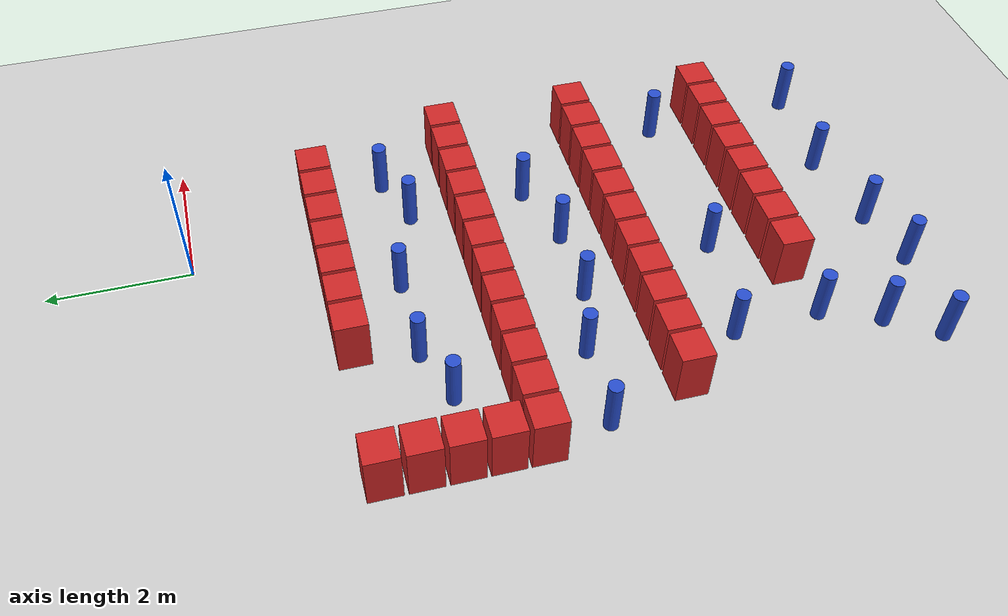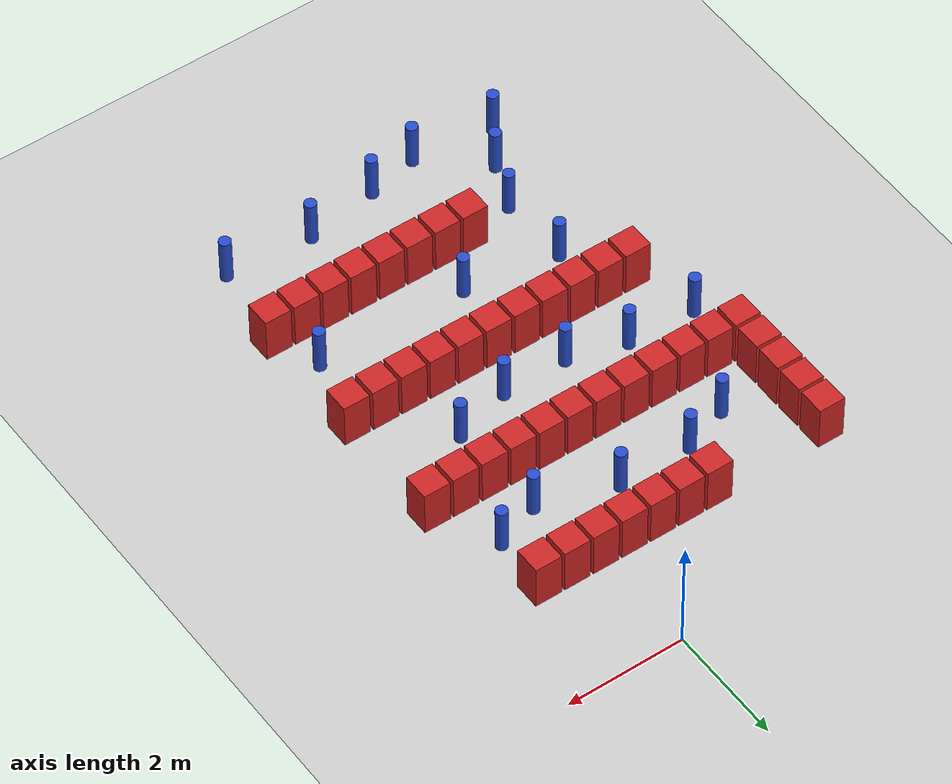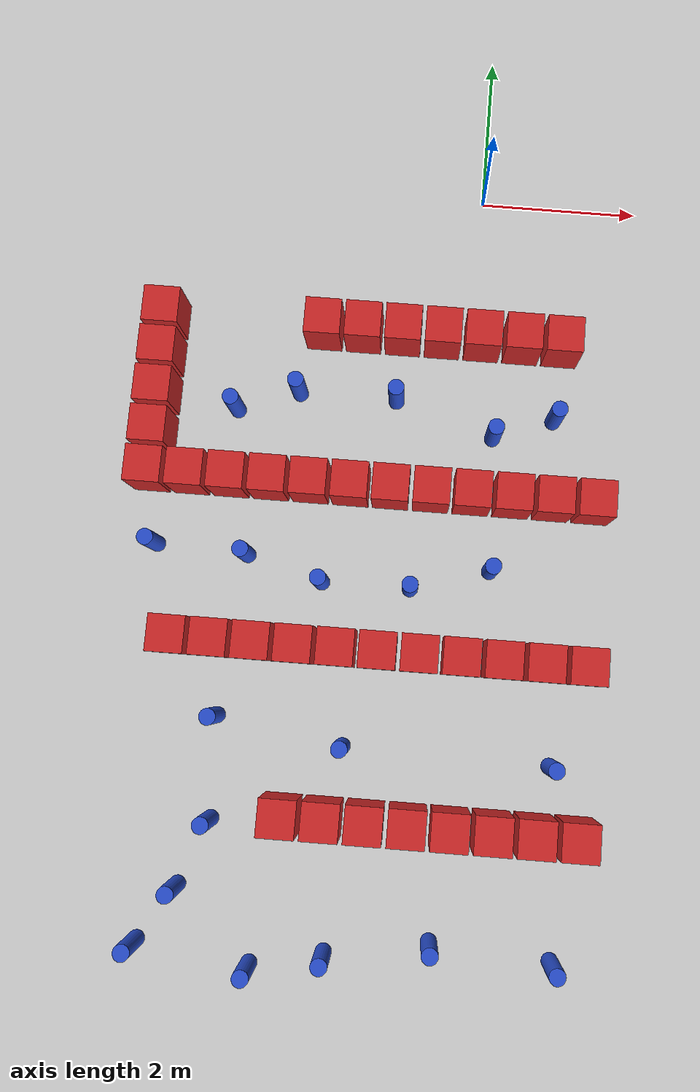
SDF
<sdf version="1.6">
 <world name="default">
  <model name="ground_plane">
   <static>1</static>
   <link name="link">
    <collision name="collision">
     <geometry><plane><normal>0 0 1</normal><size>100 100</size></plane></geometry>
     <surface><friction><ode><mu>100</mu><mu2>50</mu2></ode></friction></surface>
    </collision>
    <visual name="visual">
     <cast_shadows>0</cast_shadows>
     <geometry><plane><normal>0 0 1</normal><size>100 100</size></plane></geometry>
     <material>
      <script><uri>file://media/materials/scripts/gazebo.material</uri><name>Gazebo/Grey</name></script>
     </material>
    </visual>
   </link>
  </model>
  <model name="box_obstacle83">
   <static>0</static>
   <link name="box_obstacle">
    <pose>0 0 0.1 0 -0 0</pose>
    <inertial>
     <mass>100</mass>
     <inertia>
      <ixx>0.166667</ixx>
      <ixy>0</ixy>
      <ixz>0</ixz>
      <iyy>0.166667</iyy>
      <iyz>0</iyz>
      <izz>0.166667</izz>
     </inertia>
    </inertial>
    <collision name="collision"><geometry><box><size>0.45 0.45 0.8</size></box></geometry></collision>
    <visual name="visual">
     <geometry><box><size>0.45 0.45 0.8</size></box></geometry>
     <material>
      <script><name>Gazebo/Red</name><uri>file://media/materials/scripts/gazebo.material</uri></script>
     </material>
    </visual>
   </link>
   <pose>-3.94045 -3.94027 0.299997 -3e-06 5e-06 -4e-06</pose>
  </model>
  <model name="box_obstacle84">
   <static>0</static>
   <link name="box_obstacle">
    <pose>0 0 0.1 0 -0 0</pose>
    <inertial>
     <mass>100</mass>
     <inertia>
      <ixx>0.166667</ixx>
      <ixy>0</ixy>
      <ixz>0</ixz>
      <iyy>0.166667</iyy>
      <iyz>0</iyz>
      <izz>0.166667</izz>
     </inertia>
    </inertial>
    <collision name="collision"><geometry><box><size>0.45 0.45 0.8</size></box></geometry></collision>
    <visual name="visual">
     <geometry><box><size>0.45 0.45 0.8</size></box></geometry>
     <material>
      <script><name>Gazebo/Red</name><uri>file://media/materials/scripts/gazebo.material</uri></script>
     </material>
    </visual>
   </link>
   <pose>-3.94045 -3.43527 0.299997 -3e-06 5e-06 -4e-06</pose>
  </model>
  <model name="box_obstacle85">
   <static>0</static>
   <link name="box_obstacle">
    <pose>0 0 0.1 0 -0 0</pose>
    <inertial>
     <mass>100</mass>
     <inertia>
      <ixx>0.166667</ixx>
      <ixy>0</ixy>
      <ixz>0</ixz>
      <iyy>0.166667</iyy>
      <iyz>0</iyz>
      <izz>0.166667</izz>
     </inertia>
    </inertial>
    <collision name="collision"><geometry><box><size>0.45 0.45 0.8</size></box></geometry></collision>
    <visual name="visual">
     <geometry><box><size>0.45 0.45 0.8</size></box></geometry>
     <material>
      <script><name>Gazebo/Red</name><uri>file://media/materials/scripts/gazebo.material</uri></script>
     </material>
    </visual>
   </link>
   <pose>-3.94045 -2.93027 0.299997 -3e-06 5e-06 -4e-06</pose>
  </model>
  <model name="box_obstacle86">
   <static>0</static>
   <link name="box_obstacle">
    <pose>0 0 0.1 0 -0 0</pose>
    <inertial>
     <mass>100</mass>
     <inertia>
      <ixx>0.166667</ixx>
      <ixy>0</ixy>
      <ixz>0</ixz>
      <iyy>0.166667</iyy>
      <iyz>0</iyz>
      <izz>0.166667</izz>
     </inertia>
    </inertial>
    <collision name="collision"><geometry><box><size>0.45 0.45 0.8</size></box></geometry></collision>
    <visual name="visual">
     <geometry><box><size>0.45 0.45 0.8</size></box></geometry>
     <material>
      <script><name>Gazebo/Red</name><uri>file://media/materials/scripts/gazebo.material</uri></script>
     </material>
    </visual>
   </link>
   <pose>-3.94045 -2.42527 0.299997 -3e-06 5e-06 -4e-06</pose>
  </model>
  <model name="box_obstacle87">
   <static>0</static>
   <link name="box_obstacle">
    <pose>0 0 0.1 0 -0 0</pose>
    <inertial>
     <mass>100</mass>
     <inertia>
      <ixx>0.166667</ixx>
      <ixy>0</ixy>
      <ixz>0</ixz>
      <iyy>0.166667</iyy>
      <iyz>0</iyz>
      <izz>0.166667</izz>
     </inertia>
    </inertial>
    <collision name="collision"><geometry><box><size>0.45 0.45 0.8</size></box></geometry></collision>
    <visual name="visual">
     <geometry><box><size>0.45 0.45 0.8</size></box></geometry>
     <material>
      <script><name>Gazebo/Red</name><uri>file://media/materials/scripts/gazebo.material</uri></script>
     </material>
    </visual>
   </link>
   <pose>-3.94045 -1.92027 0.299997 -3e-06 5e-06 -4e-06</pose>
  </model>
  <model name="box_obstacle102">
   <static>0</static>
   <link name="box_obstacle">
    <pose>0 0 0.1 0 -0 0</pose>
    <inertial>
     <mass>100</mass>
     <inertia>
      <ixx>0.166667</ixx>
      <ixy>0</ixy>
      <ixz>0</ixz>
      <iyy>0.166667</iyy>
      <iyz>0</iyz>
      <izz>0.166667</izz>
     </inertia>
    </inertial>
    <collision name="collision"><geometry><box><size>0.45 0.45 0.8</size></box></geometry></collision>
    <visual name="visual">
     <geometry><box><size>0.45 0.45 0.8</size></box></geometry>
     <material>
      <script><name>Gazebo/Red</name><uri>file://media/materials/scripts/gazebo.material</uri></script>
     </material>
    </visual>
   </link>
   <pose>-3.43545 -5.96027 0.299997 -3e-06 5e-06 -4e-06</pose>
  </model>
  <model name="box_obstacle103">
   <static>0</static>
   <link name="box_obstacle">
    <pose>0 0 0.1 0 -0 0</pose>
    <inertial>
     <mass>100</mass>
     <inertia>
      <ixx>0.166667</ixx>
      <ixy>0</ixy>
      <ixz>0</ixz>
      <iyy>0.166667</iyy>
      <iyz>0</iyz>
      <izz>0.166667</izz>
     </inertia>
    </inertial>
    <collision name="collision"><geometry><box><size>0.45 0.45 0.8</size></box></geometry></collision>
    <visual name="visual">
     <geometry><box><size>0.45 0.45 0.8</size></box></geometry>
     <material>
      <script><name>Gazebo/Red</name><uri>file://media/materials/scripts/gazebo.material</uri></script>
     </material>
    </visual>
   </link>
   <pose>-3.43545 -3.94027 0.299997 -3e-06 5e-06 -4e-06</pose>
  </model>
  <model name="box_obstacle107">
   <static>0</static>
   <link name="box_obstacle">
    <pose>0 0 0.1 0 -0 0</pose>
    <inertial>
     <mass>100</mass>
     <inertia>
      <ixx>0.166667</ixx>
      <ixy>0</ixy>
      <ixz>0</ixz>
      <iyy>0.166667</iyy>
      <iyz>0</iyz>
      <izz>0.166667</izz>
     </inertia>
    </inertial>
    <collision name="collision"><geometry><box><size>0.45 0.45 0.8</size></box></geometry></collision>
    <visual name="visual">
     <geometry><box><size>0.45 0.45 0.8</size></box></geometry>
     <material>
      <script><name>Gazebo/Red</name><uri>file://media/materials/scripts/gazebo.material</uri></script>
     </material>
    </visual>
   </link>
   <pose>-2.93045 -5.96027 0.299997 -3e-06 5e-06 -4e-06</pose>
  </model>
  <model name="box_obstacle108">
   <static>0</static>
   <link name="box_obstacle">
    <pose>0 0 0.1 0 -0 0</pose>
    <inertial>
     <mass>100</mass>
     <inertia>
      <ixx>0.166667</ixx>
      <ixy>0</ixy>
      <ixz>0</ixz>
      <iyy>0.166667</iyy>
      <iyz>0</iyz>
      <izz>0.166667</izz>
     </inertia>
    </inertial>
    <collision name="collision"><geometry><box><size>0.45 0.45 0.8</size></box></geometry></collision>
    <visual name="visual">
     <geometry><box><size>0.45 0.45 0.8</size></box></geometry>
     <material>
      <script><name>Gazebo/Red</name><uri>file://media/materials/scripts/gazebo.material</uri></script>
     </material>
    </visual>
   </link>
   <pose>-2.93045 -3.94027 0.299997 -3e-06 5e-06 -4e-06</pose>
  </model>
  <model name="box_obstacle112">
   <static>0</static>
   <link name="box_obstacle">
    <pose>0 0 0.1 0 -0 0</pose>
    <inertial>
     <mass>100</mass>
     <inertia>
      <ixx>0.166667</ixx>
      <ixy>0</ixy>
      <ixz>0</ixz>
      <iyy>0.166667</iyy>
      <iyz>0</iyz>
      <izz>0.166667</izz>
     </inertia>
    </inertial>
    <collision name="collision"><geometry><box><size>0.45 0.45 0.8</size></box></geometry></collision>
    <visual name="visual">
     <geometry><box><size>0.45 0.45 0.8</size></box></geometry>
     <material>
      <script><name>Gazebo/Red</name><uri>file://media/materials/scripts/gazebo.material</uri></script>
     </material>
    </visual>
   </link>
   <pose>-2.42545 -5.96027 0.299997 -3e-06 5e-06 -4e-06</pose>
  </model>
  <model name="box_obstacle113">
   <static>0</static>
   <link name="box_obstacle">
    <pose>0 0 0.1 0 -0 0</pose>
    <inertial>
     <mass>100</mass>
     <inertia>
      <ixx>0.166667</ixx>
      <ixy>0</ixy>
      <ixz>0</ixz>
      <iyy>0.166667</iyy>
      <iyz>0</iyz>
      <izz>0.166667</izz>
     </inertia>
    </inertial>
    <collision name="collision"><geometry><box><size>0.45 0.45 0.8</size></box></geometry></collision>
    <visual name="visual">
     <geometry><box><size>0.45 0.45 0.8</size></box></geometry>
     <material>
      <script><name>Gazebo/Red</name><uri>file://media/materials/scripts/gazebo.material</uri></script>
     </material>
    </visual>
   </link>
   <pose>-2.42545 -3.94027 0.299997 -3e-06 5e-06 -4e-06</pose>
  </model>
  <model name="box_obstacle117">
   <static>0</static>
   <link name="box_obstacle">
    <pose>0 0 0.1 0 -0 0</pose>
    <inertial>
     <mass>100</mass>
     <inertia>
      <ixx>0.166667</ixx>
      <ixy>0</ixy>
      <ixz>0</ixz>
      <iyy>0.166667</iyy>
      <iyz>0</iyz>
      <izz>0.166667</izz>
     </inertia>
    </inertial>
    <collision name="collision"><geometry><box><size>0.45 0.45 0.8</size></box></geometry></collision>
    <visual name="visual">
     <geometry><box><size>0.45 0.45 0.8</size></box></geometry>
     <material>
      <script><name>Gazebo/Red</name><uri>file://media/materials/scripts/gazebo.material</uri></script>
     </material>
    </visual>
   </link>
   <pose>-1.92045 -7.98027 0.299997 -3e-06 5e-06 -4e-06</pose>
  </model>
  <model name="box_obstacle118">
   <static>0</static>
   <link name="box_obstacle">
    <pose>0 0 0.1 0 -0 0</pose>
    <inertial>
     <mass>100</mass>
     <inertia>
      <ixx>0.166667</ixx>
      <ixy>0</ixy>
      <ixz>0</ixz>
      <iyy>0.166667</iyy>
      <iyz>0</iyz>
      <izz>0.166667</izz>
     </inertia>
    </inertial>
    <collision name="collision"><geometry><box><size>0.45 0.45 0.8</size></box></geometry></collision>
    <visual name="visual">
     <geometry><box><size>0.45 0.45 0.8</size></box></geometry>
     <material>
      <script><name>Gazebo/Red</name><uri>file://media/materials/scripts/gazebo.material</uri></script>
     </material>
    </visual>
   </link>
   <pose>-1.92045 -5.96027 0.299997 -3e-06 5e-06 -4e-06</pose>
  </model>
  <model name="box_obstacle119">
   <static>0</static>
   <link name="box_obstacle">
    <pose>0 0 0.1 0 -0 0</pose>
    <inertial>
     <mass>100</mass>
     <inertia>
      <ixx>0.166667</ixx>
      <ixy>0</ixy>
      <ixz>0</ixz>
      <iyy>0.166667</iyy>
      <iyz>0</iyz>
      <izz>0.166667</izz>
     </inertia>
    </inertial>
    <collision name="collision"><geometry><box><size>0.45 0.45 0.8</size></box></geometry></collision>
    <visual name="visual">
     <geometry><box><size>0.45 0.45 0.8</size></box></geometry>
     <material>
      <script><name>Gazebo/Red</name><uri>file://media/materials/scripts/gazebo.material</uri></script>
     </material>
    </visual>
   </link>
   <pose>-1.92045 -3.94027 0.299997 -3e-06 5e-06 -4e-06</pose>
  </model>
  <model name="box_obstacle120">
   <static>0</static>
   <link name="box_obstacle">
    <pose>0 0 0.1 0 -0 0</pose>
    <inertial>
     <mass>100</mass>
     <inertia>
      <ixx>0.166667</ixx>
      <ixy>0</ixy>
      <ixz>0</ixz>
      <iyy>0.166667</iyy>
      <iyz>0</iyz>
      <izz>0.166667</izz>
     </inertia>
    </inertial>
    <collision name="collision"><geometry><box><size>0.45 0.45 0.8</size></box></geometry></collision>
    <visual name="visual">
     <geometry><box><size>0.45 0.45 0.8</size></box></geometry>
     <material>
      <script><name>Gazebo/Red</name><uri>file://media/materials/scripts/gazebo.material</uri></script>
     </material>
    </visual>
   </link>
   <pose>-1.92045 -1.92027 0.299997 -3e-06 5e-06 -4e-06</pose>
  </model>
  <model name="box_obstacle135">
   <static>0</static>
   <link name="box_obstacle">
    <pose>0 0 0.1 0 -0 0</pose>
    <inertial>
     <mass>100</mass>
     <inertia>
      <ixx>0.166667</ixx>
      <ixy>0</ixy>
      <ixz>0</ixz>
      <iyy>0.166667</iyy>
      <iyz>0</iyz>
      <izz>0.166667</izz>
     </inertia>
    </inertial>
    <collision name="collision"><geometry><box><size>0.45 0.45 0.8</size></box></geometry></collision>
    <visual name="visual">
     <geometry><box><size>0.45 0.45 0.8</size></box></geometry>
     <material>
      <script><name>Gazebo/Red</name><uri>file://media/materials/scripts/gazebo.material</uri></script>
     </material>
    </visual>
   </link>
   <pose>-1.41545 -7.98027 0.299997 -3e-06 5e-06 -4e-06</pose>
  </model>
  <model name="box_obstacle136">
   <static>0</static>
   <link name="box_obstacle">
    <pose>0 0 0.1 0 -0 0</pose>
    <inertial>
     <mass>100</mass>
     <inertia>
      <ixx>0.166667</ixx>
      <ixy>0</ixy>
      <ixz>0</ixz>
      <iyy>0.166667</iyy>
      <iyz>0</iyz>
      <izz>0.166667</izz>
     </inertia>
    </inertial>
    <collision name="collision"><geometry><box><size>0.45 0.45 0.8</size></box></geometry></collision>
    <visual name="visual">
     <geometry><box><size>0.45 0.45 0.8</size></box></geometry>
     <material>
      <script><name>Gazebo/Red</name><uri>file://media/materials/scripts/gazebo.material</uri></script>
     </material>
    </visual>
   </link>
   <pose>-1.41545 -5.96027 0.299997 -3e-06 5e-06 -4e-06</pose>
  </model>
  <model name="box_obstacle137">
   <static>0</static>
   <link name="box_obstacle">
    <pose>0 0 0.1 0 -0 0</pose>
    <inertial>
     <mass>100</mass>
     <inertia>
      <ixx>0.166667</ixx>
      <ixy>0</ixy>
      <ixz>0</ixz>
      <iyy>0.166667</iyy>
      <iyz>0</iyz>
      <izz>0.166667</izz>
     </inertia>
    </inertial>
    <collision name="collision"><geometry><box><size>0.45 0.45 0.8</size></box></geometry></collision>
    <visual name="visual">
     <geometry><box><size>0.45 0.45 0.8</size></box></geometry>
     <material>
      <script><name>Gazebo/Red</name><uri>file://media/materials/scripts/gazebo.material</uri></script>
     </material>
    </visual>
   </link>
   <pose>-1.41545 -3.94027 0.299997 -3e-06 5e-06 -4e-06</pose>
  </model>
  <model name="box_obstacle138">
   <static>0</static>
   <link name="box_obstacle">
    <pose>0 0 0.1 0 -0 0</pose>
    <inertial>
     <mass>100</mass>
     <inertia>
      <ixx>0.166667</ixx>
      <ixy>0</ixy>
      <ixz>0</ixz>
      <iyy>0.166667</iyy>
      <iyz>0</iyz>
      <izz>0.166667</izz>
     </inertia>
    </inertial>
    <collision name="collision"><geometry><box><size>0.45 0.45 0.8</size></box></geometry></collision>
    <visual name="visual">
     <geometry><box><size>0.45 0.45 0.8</size></box></geometry>
     <material>
      <script><name>Gazebo/Red</name><uri>file://media/materials/scripts/gazebo.material</uri></script>
     </material>
    </visual>
   </link>
   <pose>-1.41545 -1.92027 0.299997 -3e-06 5e-06 -4e-06</pose>
  </model>
  <model name="box_obstacle142">
   <static>0</static>
   <link name="box_obstacle">
    <pose>0 0 0.1 0 -0 0</pose>
    <inertial>
     <mass>100</mass>
     <inertia>
      <ixx>0.166667</ixx>
      <ixy>0</ixy>
      <ixz>0</ixz>
      <iyy>0.166667</iyy>
      <iyz>0</iyz>
      <izz>0.166667</izz>
     </inertia>
    </inertial>
    <collision name="collision"><geometry><box><size>0.45 0.45 0.8</size></box></geometry></collision>
    <visual name="visual">
     <geometry><box><size>0.45 0.45 0.8</size></box></geometry>
     <material>
      <script><name>Gazebo/Red</name><uri>file://media/materials/scripts/gazebo.material</uri></script>
     </material>
    </visual>
   </link>
   <pose>-0.910447 -7.98027 0.299997 -3e-06 5e-06 -4e-06</pose>
  </model>
  <model name="box_obstacle143">
   <static>0</static>
   <link name="box_obstacle">
    <pose>0 0 0.1 0 -0 0</pose>
    <inertial>
     <mass>100</mass>
     <inertia>
      <ixx>0.166667</ixx>
      <ixy>0</ixy>
      <ixz>0</ixz>
      <iyy>0.166667</iyy>
      <iyz>0</iyz>
      <izz>0.166667</izz>
     </inertia>
    </inertial>
    <collision name="collision"><geometry><box><size>0.45 0.45 0.8</size></box></geometry></collision>
    <visual name="visual">
     <geometry><box><size>0.45 0.45 0.8</size></box></geometry>
     <material>
      <script><name>Gazebo/Red</name><uri>file://media/materials/scripts/gazebo.material</uri></script>
     </material>
    </visual>
   </link>
   <pose>-0.910447 -5.96027 0.299997 -3e-06 5e-06 -4e-06</pose>
  </model>
  <model name="box_obstacle144">
   <static>0</static>
   <link name="box_obstacle">
    <pose>0 0 0.1 0 -0 0</pose>
    <inertial>
     <mass>100</mass>
     <inertia>
      <ixx>0.166667</ixx>
      <ixy>0</ixy>
      <ixz>0</ixz>
      <iyy>0.166667</iyy>
      <iyz>0</iyz>
      <izz>0.166667</izz>
     </inertia>
    </inertial>
    <collision name="collision"><geometry><box><size>0.45 0.45 0.8</size></box></geometry></collision>
    <visual name="visual">
     <geometry><box><size>0.45 0.45 0.8</size></box></geometry>
     <material>
      <script><name>Gazebo/Red</name><uri>file://media/materials/scripts/gazebo.material</uri></script>
     </material>
    </visual>
   </link>
   <pose>-0.910447 -3.94027 0.299997 -3e-06 5e-06 -4e-06</pose>
  </model>
  <model name="box_obstacle145">
   <static>0</static>
   <link name="box_obstacle">
    <pose>0 0 0.1 0 -0 0</pose>
    <inertial>
     <mass>100</mass>
     <inertia>
      <ixx>0.166667</ixx>
      <ixy>0</ixy>
      <ixz>0</ixz>
      <iyy>0.166667</iyy>
      <iyz>0</iyz>
      <izz>0.166667</izz>
     </inertia>
    </inertial>
    <collision name="collision"><geometry><box><size>0.45 0.45 0.8</size></box></geometry></collision>
    <visual name="visual">
     <geometry><box><size>0.45 0.45 0.8</size></box></geometry>
     <material>
      <script><name>Gazebo/Red</name><uri>file://media/materials/scripts/gazebo.material</uri></script>
     </material>
    </visual>
   </link>
   <pose>-0.910447 -1.92027 0.299997 -3e-06 5e-06 -4e-06</pose>
  </model>
  <model name="box_obstacle149">
   <static>0</static>
   <link name="box_obstacle">
    <pose>0 0 0.1 0 -0 0</pose>
    <inertial>
     <mass>100</mass>
     <inertia>
      <ixx>0.166667</ixx>
      <ixy>0</ixy>
      <ixz>0</ixz>
      <iyy>0.166667</iyy>
      <iyz>0</iyz>
      <izz>0.166667</izz>
     </inertia>
    </inertial>
    <collision name="collision"><geometry><box><size>0.45 0.45 0.8</size></box></geometry></collision>
    <visual name="visual">
     <geometry><box><size>0.45 0.45 0.8</size></box></geometry>
     <material>
      <script><name>Gazebo/Red</name><uri>file://media/materials/scripts/gazebo.material</uri></script>
     </material>
    </visual>
   </link>
   <pose>-0.405447 -7.98027 0.299997 -3e-06 5e-06 -4e-06</pose>
  </model>
  <model name="box_obstacle150">
   <static>0</static>
   <link name="box_obstacle">
    <pose>0 0 0.1 0 -0 0</pose>
    <inertial>
     <mass>100</mass>
     <inertia>
      <ixx>0.166667</ixx>
      <ixy>0</ixy>
      <ixz>0</ixz>
      <iyy>0.166667</iyy>
      <iyz>0</iyz>
      <izz>0.166667</izz>
     </inertia>
    </inertial>
    <collision name="collision"><geometry><box><size>0.45 0.45 0.8</size></box></geometry></collision>
    <visual name="visual">
     <geometry><box><size>0.45 0.45 0.8</size></box></geometry>
     <material>
      <script><name>Gazebo/Red</name><uri>file://media/materials/scripts/gazebo.material</uri></script>
     </material>
    </visual>
   </link>
   <pose>-0.405447 -5.96027 0.299997 -3e-06 5e-06 -4e-06</pose>
  </model>
  <model name="box_obstacle151">
   <static>0</static>
   <link name="box_obstacle">
    <pose>0 0 0.1 0 -0 0</pose>
    <inertial>
     <mass>100</mass>
     <inertia>
      <ixx>0.166667</ixx>
      <ixy>0</ixy>
      <ixz>0</ixz>
      <iyy>0.166667</iyy>
      <iyz>0</iyz>
      <izz>0.166667</izz>
     </inertia>
    </inertial>
    <collision name="collision"><geometry><box><size>0.45 0.45 0.8</size></box></geometry></collision>
    <visual name="visual">
     <geometry><box><size>0.45 0.45 0.8</size></box></geometry>
     <material>
      <script><name>Gazebo/Red</name><uri>file://media/materials/scripts/gazebo.material</uri></script>
     </material>
    </visual>
   </link>
   <pose>-0.405447 -3.94027 0.299997 -3e-06 5e-06 -4e-06</pose>
  </model>
  <model name="box_obstacle152">
   <static>0</static>
   <link name="box_obstacle">
    <pose>0 0 0.1 0 -0 0</pose>
    <inertial>
     <mass>100</mass>
     <inertia>
      <ixx>0.166667</ixx>
      <ixy>0</ixy>
      <ixz>0</ixz>
      <iyy>0.166667</iyy>
      <iyz>0</iyz>
      <izz>0.166667</izz>
     </inertia>
    </inertial>
    <collision name="collision"><geometry><box><size>0.45 0.45 0.8</size></box></geometry></collision>
    <visual name="visual">
     <geometry><box><size>0.45 0.45 0.8</size></box></geometry>
     <material>
      <script><name>Gazebo/Red</name><uri>file://media/materials/scripts/gazebo.material</uri></script>
     </material>
    </visual>
   </link>
   <pose>-0.405447 -1.92027 0.299997 -3e-06 5e-06 -4e-06</pose>
  </model>
  <model name="box_obstacle156">
   <static>0</static>
   <link name="box_obstacle">
    <pose>0 0 0.1 0 -0 0</pose>
    <inertial>
     <mass>100</mass>
     <inertia>
      <ixx>0.166667</ixx>
      <ixy>0</ixy>
      <ixz>0</ixz>
      <iyy>0.166667</iyy>
      <iyz>0</iyz>
      <izz>0.166667</izz>
     </inertia>
    </inertial>
    <collision name="collision"><geometry><box><size>0.45 0.45 0.8</size></box></geometry></collision>
    <visual name="visual">
     <geometry><box><size>0.45 0.45 0.8</size></box></geometry>
     <material>
      <script><name>Gazebo/Red</name><uri>file://media/materials/scripts/gazebo.material</uri></script>
     </material>
    </visual>
   </link>
   <pose>0.099553 -7.98027 0.299997 -3e-06 5e-06 -4e-06</pose>
  </model>
  <model name="box_obstacle157">
   <static>0</static>
   <link name="box_obstacle">
    <pose>0 0 0.1 0 -0 0</pose>
    <inertial>
     <mass>100</mass>
     <inertia>
      <ixx>0.166667</ixx>
      <ixy>0</ixy>
      <ixz>0</ixz>
      <iyy>0.166667</iyy>
      <iyz>0</iyz>
      <izz>0.166667</izz>
     </inertia>
    </inertial>
    <collision name="collision"><geometry><box><size>0.45 0.45 0.8</size></box></geometry></collision>
    <visual name="visual">
     <geometry><box><size>0.45 0.45 0.8</size></box></geometry>
     <material>
      <script><name>Gazebo/Red</name><uri>file://media/materials/scripts/gazebo.material</uri></script>
     </material>
    </visual>
   </link>
   <pose>0.099553 -5.96027 0.299997 -3e-06 5e-06 -4e-06</pose>
  </model>
  <model name="box_obstacle158">
   <static>0</static>
   <link name="box_obstacle">
    <pose>0 0 0.1 0 -0 0</pose>
    <inertial>
     <mass>100</mass>
     <inertia>
      <ixx>0.166667</ixx>
      <ixy>0</ixy>
      <ixz>0</ixz>
      <iyy>0.166667</iyy>
      <iyz>0</iyz>
      <izz>0.166667</izz>
     </inertia>
    </inertial>
    <collision name="collision"><geometry><box><size>0.45 0.45 0.8</size></box></geometry></collision>
    <visual name="visual">
     <geometry><box><size>0.45 0.45 0.8</size></box></geometry>
     <material>
      <script><name>Gazebo/Red</name><uri>file://media/materials/scripts/gazebo.material</uri></script>
     </material>
    </visual>
   </link>
   <pose>0.099553 -3.94027 0.299997 -3e-06 5e-06 -4e-06</pose>
  </model>
  <model name="box_obstacle159">
   <static>0</static>
   <link name="box_obstacle">
    <pose>0 0 0.1 0 -0 0</pose>
    <inertial>
     <mass>100</mass>
     <inertia>
      <ixx>0.166667</ixx>
      <ixy>0</ixy>
      <ixz>0</ixz>
      <iyy>0.166667</iyy>
      <iyz>0</iyz>
      <izz>0.166667</izz>
     </inertia>
    </inertial>
    <collision name="collision"><geometry><box><size>0.45 0.45 0.8</size></box></geometry></collision>
    <visual name="visual">
     <geometry><box><size>0.45 0.45 0.8</size></box></geometry>
     <material>
      <script><name>Gazebo/Red</name><uri>file://media/materials/scripts/gazebo.material</uri></script>
     </material>
    </visual>
   </link>
   <pose>0.099553 -1.92027 0.299997 -3e-06 5e-06 -4e-06</pose>
  </model>
  <model name="box_obstacle165">
   <static>0</static>
   <link name="box_obstacle">
    <pose>0 0 0.1 0 -0 0</pose>
    <inertial>
     <mass>100</mass>
     <inertia>
      <ixx>0.166667</ixx>
      <ixy>0</ixy>
      <ixz>0</ixz>
      <iyy>0.166667</iyy>
      <iyz>0</iyz>
      <izz>0.166667</izz>
     </inertia>
    </inertial>
    <collision name="collision"><geometry><box><size>0.45 0.45 0.8</size></box></geometry></collision>
    <visual name="visual">
     <geometry><box><size>0.45 0.45 0.8</size></box></geometry>
     <material>
      <script><name>Gazebo/Red</name><uri>file://media/materials/scripts/gazebo.material</uri></script>
     </material>
    </visual>
   </link>
   <pose>0.604553 -7.98027 0.299997 -3e-06 5e-06 -4e-06</pose>
  </model>
  <model name="box_obstacle166">
   <static>0</static>
   <link name="box_obstacle">
    <pose>0 0 0.1 0 -0 0</pose>
    <inertial>
     <mass>100</mass>
     <inertia>
      <ixx>0.166667</ixx>
      <ixy>0</ixy>
      <ixz>0</ixz>
      <iyy>0.166667</iyy>
      <iyz>0</iyz>
      <izz>0.166667</izz>
     </inertia>
    </inertial>
    <collision name="collision"><geometry><box><size>0.45 0.45 0.8</size></box></geometry></collision>
    <visual name="visual">
     <geometry><box><size>0.45 0.45 0.8</size></box></geometry>
     <material>
      <script><name>Gazebo/Red</name><uri>file://media/materials/scripts/gazebo.material</uri></script>
     </material>
    </visual>
   </link>
   <pose>0.604553 -5.96027 0.299997 -3e-06 5e-06 -4e-06</pose>
  </model>
  <model name="box_obstacle167">
   <static>0</static>
   <link name="box_obstacle">
    <pose>0 0 0.1 0 -0 0</pose>
    <inertial>
     <mass>100</mass>
     <inertia>
      <ixx>0.166667</ixx>
      <ixy>0</ixy>
      <ixz>0</ixz>
      <iyy>0.166667</iyy>
      <iyz>0</iyz>
      <izz>0.166667</izz>
     </inertia>
    </inertial>
    <collision name="collision"><geometry><box><size>0.45 0.45 0.8</size></box></geometry></collision>
    <visual name="visual">
     <geometry><box><size>0.45 0.45 0.8</size></box></geometry>
     <material>
      <script><name>Gazebo/Red</name><uri>file://media/materials/scripts/gazebo.material</uri></script>
     </material>
    </visual>
   </link>
   <pose>0.604553 -3.94027 0.299997 -3e-06 5e-06 -4e-06</pose>
  </model>
  <model name="box_obstacle168">
   <static>0</static>
   <link name="box_obstacle">
    <pose>0 0 0.1 0 -0 0</pose>
    <inertial>
     <mass>100</mass>
     <inertia>
      <ixx>0.166667</ixx>
      <ixy>0</ixy>
      <ixz>0</ixz>
      <iyy>0.166667</iyy>
      <iyz>0</iyz>
      <izz>0.166667</izz>
     </inertia>
    </inertial>
    <collision name="collision"><geometry><box><size>0.45 0.45 0.8</size></box></geometry></collision>
    <visual name="visual">
     <geometry><box><size>0.45 0.45 0.8</size></box></geometry>
     <material>
      <script><name>Gazebo/Red</name><uri>file://media/materials/scripts/gazebo.material</uri></script>
     </material>
    </visual>
   </link>
   <pose>0.604553 -1.92027 0.299997 -3e-06 5e-06 -4e-06</pose>
  </model>
  <model name="box_obstacle172">
   <static>0</static>
   <link name="box_obstacle">
    <pose>0 0 0.1 0 -0 0</pose>
    <inertial>
     <mass>100</mass>
     <inertia>
      <ixx>0.166667</ixx>
      <ixy>0</ixy>
      <ixz>0</ixz>
      <iyy>0.166667</iyy>
      <iyz>0</iyz>
      <izz>0.166667</izz>
     </inertia>
    </inertial>
    <collision name="collision"><geometry><box><size>0.45 0.45 0.8</size></box></geometry></collision>
    <visual name="visual">
     <geometry><box><size>0.45 0.45 0.8</size></box></geometry>
     <material>
      <script><name>Gazebo/Red</name><uri>file://media/materials/scripts/gazebo.material</uri></script>
     </material>
    </visual>
   </link>
   <pose>1.10955 -7.98027 0.299997 -3e-06 5e-06 -4e-06</pose>
  </model>
  <model name="box_obstacle173">
   <static>0</static>
   <link name="box_obstacle">
    <pose>0 0 0.1 0 -0 0</pose>
    <inertial>
     <mass>100</mass>
     <inertia>
      <ixx>0.166667</ixx>
      <ixy>0</ixy>
      <ixz>0</ixz>
      <iyy>0.166667</iyy>
      <iyz>0</iyz>
      <izz>0.166667</izz>
     </inertia>
    </inertial>
    <collision name="collision"><geometry><box><size>0.45 0.45 0.8</size></box></geometry></collision>
    <visual name="visual">
     <geometry><box><size>0.45 0.45 0.8</size></box></geometry>
     <material>
      <script><name>Gazebo/Red</name><uri>file://media/materials/scripts/gazebo.material</uri></script>
     </material>
    </visual>
   </link>
   <pose>1.10955 -5.96027 0.299997 -3e-06 5e-06 -4e-06</pose>
  </model>
  <model name="box_obstacle174">
   <static>0</static>
   <link name="box_obstacle">
    <pose>0 0 0.1 0 -0 0</pose>
    <inertial>
     <mass>100</mass>
     <inertia>
      <ixx>0.166667</ixx>
      <ixy>0</ixy>
      <ixz>0</ixz>
      <iyy>0.166667</iyy>
      <iyz>0</iyz>
      <izz>0.166667</izz>
     </inertia>
    </inertial>
    <collision name="collision"><geometry><box><size>0.45 0.45 0.8</size></box></geometry></collision>
    <visual name="visual">
     <geometry><box><size>0.45 0.45 0.8</size></box></geometry>
     <material>
      <script><name>Gazebo/Red</name><uri>file://media/materials/scripts/gazebo.material</uri></script>
     </material>
    </visual>
   </link>
   <pose>1.10955 -3.94027 0.299997 -3e-06 5e-06 -4e-06</pose>
  </model>
  <model name="box_obstacle175">
   <static>0</static>
   <link name="box_obstacle">
    <pose>0 0 0.1 0 -0 0</pose>
    <inertial>
     <mass>100</mass>
     <inertia>
      <ixx>0.166667</ixx>
      <ixy>0</ixy>
      <ixz>0</ixz>
      <iyy>0.166667</iyy>
      <iyz>0</iyz>
      <izz>0.166667</izz>
     </inertia>
    </inertial>
    <collision name="collision"><geometry><box><size>0.45 0.45 0.8</size></box></geometry></collision>
    <visual name="visual">
     <geometry><box><size>0.45 0.45 0.8</size></box></geometry>
     <material>
      <script><name>Gazebo/Red</name><uri>file://media/materials/scripts/gazebo.material</uri></script>
     </material>
    </visual>
   </link>
   <pose>1.10955 -1.92027 0.299997 -3e-06 5e-06 -4e-06</pose>
  </model>
  <model name="box_obstacle179">
   <static>0</static>
   <link name="box_obstacle">
    <pose>0 0 0.1 0 -0 0</pose>
    <inertial>
     <mass>100</mass>
     <inertia>
      <ixx>0.166667</ixx>
      <ixy>0</ixy>
      <ixz>0</ixz>
      <iyy>0.166667</iyy>
      <iyz>0</iyz>
      <izz>0.166667</izz>
     </inertia>
    </inertial>
    <collision name="collision"><geometry><box><size>0.45 0.45 0.8</size></box></geometry></collision>
    <visual name="visual">
     <geometry><box><size>0.45 0.45 0.8</size></box></geometry>
     <material>
      <script><name>Gazebo/Red</name><uri>file://media/materials/scripts/gazebo.material</uri></script>
     </material>
    </visual>
   </link>
   <pose>1.61455 -7.98027 0.299997 -3e-06 5e-06 -4e-06</pose>
  </model>
  <model name="box_obstacle180">
   <static>0</static>
   <link name="box_obstacle">
    <pose>0 0 0.1 0 -0 0</pose>
    <inertial>
     <mass>100</mass>
     <inertia>
      <ixx>0.166667</ixx>
      <ixy>0</ixy>
      <ixz>0</ixz>
      <iyy>0.166667</iyy>
      <iyz>0</iyz>
      <izz>0.166667</izz>
     </inertia>
    </inertial>
    <collision name="collision"><geometry><box><size>0.45 0.45 0.8</size></box></geometry></collision>
    <visual name="visual">
     <geometry><box><size>0.45 0.45 0.8</size></box></geometry>
     <material>
      <script><name>Gazebo/Red</name><uri>file://media/materials/scripts/gazebo.material</uri></script>
     </material>
    </visual>
   </link>
   <pose>1.61455 -5.96027 0.299997 -3e-06 5e-06 -4e-06</pose>
  </model>
  <model name="box_obstacle181">
   <static>0</static>
   <link name="box_obstacle">
    <pose>0 0 0.1 0 -0 0</pose>
    <inertial>
     <mass>100</mass>
     <inertia>
      <ixx>0.166667</ixx>
      <ixy>0</ixy>
      <ixz>0</ixz>
      <iyy>0.166667</iyy>
      <iyz>0</iyz>
      <izz>0.166667</izz>
     </inertia>
    </inertial>
    <collision name="collision"><geometry><box><size>0.45 0.45 0.8</size></box></geometry></collision>
    <visual name="visual">
     <geometry><box><size>0.45 0.45 0.8</size></box></geometry>
     <material>
      <script><name>Gazebo/Red</name><uri>file://media/materials/scripts/gazebo.material</uri></script>
     </material>
    </visual>
   </link>
   <pose>1.61455 -3.94027 0.299997 -3e-06 5e-06 -4e-06</pose>
  </model>
  <model name="cylinder_obstacle2">
   <static>0</static>
   <link name="link">
    <pose>0 0 1 0 -0 0</pose>
    <inertial>
     <mass>100</mass>
     <inertia>
      <ixx>0.166667</ixx>
      <ixy>0</ixy>
      <ixz>0</ixz>
      <iyy>0.166667</iyy>
      <iyz>0</iyz>
      <izz>0.166667</izz>
     </inertia>
    </inertial>
    <collision name="collision">
     <geometry><cylinder><radius>0.1</radius><length>0.8</length></cylinder></geometry>
    </collision>
    <visual name="visual">
     <geometry><cylinder><radius>0.1</radius><length>0.8</length></cylinder></geometry>
     <material>
      <script><name>Gazebo/Blue</name><uri>file://media/materials/scripts/gazebo.material</uri></script>
     </material>
    </visual>
   </link>
   <pose>1.28459 -7.19094 -0.600002 3e-06 1e-06 0.003885</pose>
  </model>
  <model name="cylinder_obstacle17">
   <static>0</static>
   <link name="link">
    <pose>0 0 1 0 -0 0</pose>
    <inertial>
     <mass>100</mass>
     <inertia>
      <ixx>0.166667</ixx>
      <ixy>0</ixy>
      <ixz>0</ixz>
      <iyy>0.166667</iyy>
      <iyz>0</iyz>
      <izz>0.166667</izz>
     </inertia>
    </inertial>
    <collision name="collision">
     <geometry><cylinder><radius>0.1</radius><length>0.8</length></cylinder></geometry>
    </collision>
    <visual name="visual">
     <geometry><cylinder><radius>0.1</radius><length>0.8</length></cylinder></geometry>
     <material>
      <script><name>Gazebo/Blue</name><uri>file://media/materials/scripts/gazebo.material</uri></script>
     </material>
    </visual>
   </link>
   <pose>-2.83183 -6.8869 -0.600002 3e-06 1e-06 0.003885</pose>
  </model>
  <model name="cylinder_obstacle24">
   <static>0</static>
   <link name="link">
    <pose>0 0 1 0 -0 0</pose>
    <inertial>
     <mass>100</mass>
     <inertia>
      <ixx>0.166667</ixx>
      <ixy>0</ixy>
      <ixz>0</ixz>
      <iyy>0.166667</iyy>
      <iyz>0</iyz>
      <izz>0.166667</izz>
     </inertia>
    </inertial>
    <collision name="collision">
     <geometry><cylinder><radius>0.1</radius><length>0.8</length></cylinder></geometry>
    </collision>
    <visual name="visual">
     <geometry><cylinder><radius>0.1</radius><length>0.8</length></cylinder></geometry>
     <material>
      <script><name>Gazebo/Blue</name><uri>file://media/materials/scripts/gazebo.material</uri></script>
     </material>
    </visual>
   </link>
   <pose>-3.52787 -9.57387 -0.600008 3e-06 1e-06 -0.001164</pose>
  </model>
  <model name="cylinder_obstacle28">
   <static>0</static>
   <link name="link">
    <pose>0 0 1 0 -0 0</pose>
    <inertial>
     <mass>100</mass>
     <inertia>
      <ixx>0.166667</ixx>
      <ixy>0</ixy>
      <ixz>0</ixz>
      <iyy>0.166667</iyy>
      <iyz>0</iyz>
      <izz>0.166667</izz>
     </inertia>
    </inertial>
    <collision name="collision">
     <geometry><cylinder><radius>0.1</radius><length>0.8</length></cylinder></geometry>
    </collision>
    <visual name="visual">
     <geometry><cylinder><radius>0.1</radius><length>0.8</length></cylinder></geometry>
     <material>
      <script><name>Gazebo/Blue</name><uri>file://media/materials/scripts/gazebo.material</uri></script>
     </material>
    </visual>
   </link>
   <pose>-0.037086 -9.34182 -0.600002 3e-06 1e-06 0.003885</pose>
  </model>
  <model name="cylinder_obstacle29">
   <static>0</static>
   <link name="link">
    <pose>0 0 1 0 -0 0</pose>
    <inertial>
     <mass>100</mass>
     <inertia>
      <ixx>0.166667</ixx>
      <ixy>0</ixy>
      <ixz>0</ixz>
      <iyy>0.166667</iyy>
      <iyz>0</iyz>
      <izz>0.166667</izz>
     </inertia>
    </inertial>
    <collision name="collision">
     <geometry><cylinder><radius>0.1</radius><length>0.8</length></cylinder></geometry>
    </collision>
    <visual name="visual">
     <geometry><cylinder><radius>0.1</radius><length>0.8</length></cylinder></geometry>
     <material>
      <script><name>Gazebo/Blue</name><uri>file://media/materials/scripts/gazebo.material</uri></script>
     </material>
    </visual>
   </link>
   <pose>1.41764 -9.45169 -0.600002 3e-06 1e-06 0.003885</pose>
  </model>
  <model name="cylinder_obstacle36">
   <static>0</static>
   <link name="link">
    <pose>0 0 1 0 -0 0</pose>
    <inertial>
     <mass>100</mass>
     <inertia>
      <ixx>0.166667</ixx>
      <ixy>0</ixy>
      <ixz>0</ixz>
      <iyy>0.166667</iyy>
      <iyz>0</iyz>
      <izz>0.166667</izz>
     </inertia>
    </inertial>
    <collision name="collision">
     <geometry><cylinder><radius>0.1</radius><length>0.8</length></cylinder></geometry>
    </collision>
    <visual name="visual">
     <geometry><cylinder><radius>0.1</radius><length>0.8</length></cylinder></geometry>
     <material>
      <script><name>Gazebo/Blue</name><uri>file://media/materials/scripts/gazebo.material</uri></script>
     </material>
    </visual>
   </link>
   <pose>-3.10367 -8.91045 -0.600002 3e-06 1e-06 0.003885</pose>
  </model>
  <model name="cylinder_obstacle38">
   <static>0</static>
   <link name="link">
    <pose>0 0 1 0 -0 0</pose>
    <inertial>
     <mass>100</mass>
     <inertia>
      <ixx>0.166667</ixx>
      <ixy>0</ixy>
      <ixz>0</ixz>
      <iyy>0.166667</iyy>
      <iyz>0</iyz>
      <izz>0.166667</izz>
     </inertia>
    </inertial>
    <collision name="collision">
     <geometry><cylinder><radius>0.1</radius><length>0.8</length></cylinder></geometry>
    </collision>
    <visual name="visual">
     <geometry><cylinder><radius>0.1</radius><length>0.8</length></cylinder></geometry>
     <material>
      <script><name>Gazebo/Blue</name><uri>file://media/materials/scripts/gazebo.material</uri></script>
     </material>
    </visual>
   </link>
   <pose>-2.17845 -2.75777 -0.600002 3e-06 1e-06 0.003885</pose>
  </model>
  <model name="cylinder_obstacle42">
   <static>0</static>
   <link name="link">
    <pose>0 0 1 0 -0 0</pose>
    <inertial>
     <mass>100</mass>
     <inertia>
      <ixx>0.166667</ixx>
      <ixy>0</ixy>
      <ixz>0</ixz>
      <iyy>0.166667</iyy>
      <iyz>0</iyz>
      <izz>0.166667</izz>
     </inertia>
    </inertial>
    <collision name="collision">
     <geometry><cylinder><radius>0.1</radius><length>0.8</length></cylinder></geometry>
    </collision>
    <visual name="visual">
     <geometry><cylinder><radius>0.1</radius><length>0.8</length></cylinder></geometry>
     <material>
      <script><name>Gazebo/Blue</name><uri>file://media/materials/scripts/gazebo.material</uri></script>
     </material>
    </visual>
   </link>
   <pose>-1.28336 -9.55335 -0.600002 3e-06 1e-06 0.003885</pose>
  </model>
  <model name="cylinder_obstacle43">
   <static>0</static>
   <link name="link">
    <pose>0 0 1 0 -0 0</pose>
    <inertial>
     <mass>100</mass>
     <inertia>
      <ixx>0.166667</ixx>
      <ixy>0</ixy>
      <ixz>0</ixz>
      <iyy>0.166667</iyy>
      <iyz>0</iyz>
      <izz>0.166667</izz>
     </inertia>
    </inertial>
    <collision name="collision">
     <geometry><cylinder><radius>0.1</radius><length>0.8</length></cylinder></geometry>
    </collision>
    <visual name="visual">
     <geometry><cylinder><radius>0.1</radius><length>0.8</length></cylinder></geometry>
     <material>
      <script><name>Gazebo/Blue</name><uri>file://media/materials/scripts/gazebo.material</uri></script>
     </material>
    </visual>
   </link>
   <pose>-0.937103 -2.76505 -0.600002 3e-06 1e-06 0.003885</pose>
  </model>
  <model name="cylinder_obstacle47">
   <static>0</static>
   <link name="link">
    <pose>0 0 1 0 -0 0</pose>
    <inertial>
     <mass>100</mass>
     <inertia>
      <ixx>0.166667</ixx>
      <ixy>0</ixy>
      <ixz>0</ixz>
      <iyy>0.166667</iyy>
      <iyz>0</iyz>
      <izz>0.166667</izz>
     </inertia>
    </inertial>
    <collision name="collision">
     <geometry><cylinder><radius>0.1</radius><length>0.8</length></cylinder></geometry>
    </collision>
    <visual name="visual">
     <geometry><cylinder><radius>0.1</radius><length>0.8</length></cylinder></geometry>
     <material>
      <script><name>Gazebo/Blue</name><uri>file://media/materials/scripts/gazebo.material</uri></script>
     </material>
    </visual>
   </link>
   <pose>-2.64915 -4.88809 -0.600002 3e-06 1e-06 0.003885</pose>
  </model>
  <model name="cylinder_obstacle49">
   <static>0</static>
   <link name="link">
    <pose>0 0 1 0 -0 0</pose>
    <inertial>
     <mass>100</mass>
     <inertia>
      <ixx>0.166667</ixx>
      <ixy>0</ixy>
      <ixz>0</ixz>
      <iyy>0.166667</iyy>
      <iyz>0</iyz>
      <izz>0.166667</izz>
     </inertia>
    </inertial>
    <collision name="collision">
     <geometry><cylinder><radius>0.1</radius><length>0.8</length></cylinder></geometry>
    </collision>
    <visual name="visual">
     <geometry><cylinder><radius>0.1</radius><length>0.8</length></cylinder></geometry>
     <material>
      <script><name>Gazebo/Blue</name><uri>file://media/materials/scripts/gazebo.material</uri></script>
     </material>
    </visual>
   </link>
   <pose>0.397961 -4.86594 -0.600002 3e-06 1e-06 0.003885</pose>
  </model>
  <model name="cylinder_obstacle53">
   <static>0</static>
   <link name="link">
    <pose>0 0 1 0 -0 0</pose>
    <inertial>
     <mass>100</mass>
     <inertia>
      <ixx>0.166667</ixx>
      <ixy>0</ixy>
      <ixz>0</ixz>
      <iyy>0.166667</iyy>
      <iyz>0</iyz>
      <izz>0.166667</izz>
     </inertia>
    </inertial>
    <collision name="collision">
     <geometry><cylinder><radius>0.1</radius><length>0.8</length></cylinder></geometry>
    </collision>
    <visual name="visual">
     <geometry><cylinder><radius>0.1</radius><length>0.8</length></cylinder></geometry>
     <material>
      <script><name>Gazebo/Blue</name><uri>file://media/materials/scripts/gazebo.material</uri></script>
     </material>
    </visual>
   </link>
   <pose>0.324086 -3.1616 -0.600002 3e-06 1e-06 0.003885</pose>
  </model>
  <model name="cylinder_obstacle61">
   <static>0</static>
   <link name="link">
    <pose>0 0 1 0 -0 0</pose>
    <inertial>
     <mass>100</mass>
     <inertia>
      <ixx>0.166667</ixx>
      <ixy>0</ixy>
      <ixz>0</ixz>
      <iyy>0.166667</iyy>
      <iyz>0</iyz>
      <izz>0.166667</izz>
     </inertia>
    </inertial>
    <collision name="collision">
     <geometry><cylinder><radius>0.1</radius><length>0.8</length></cylinder></geometry>
    </collision>
    <visual name="visual">
     <geometry><cylinder><radius>0.1</radius><length>0.8</length></cylinder></geometry>
     <material>
      <script><name>Gazebo/Blue</name><uri>file://media/materials/scripts/gazebo.material</uri></script>
     </material>
    </visual>
   </link>
   <pose>-0.581663 -5.15995 -0.600002 3e-06 1e-06 0.003885</pose>
  </model>
  <model name="cylinder_obstacle69">
   <static>0</static>
   <link name="link">
    <pose>0 0 1 0 -0 0</pose>
    <inertial>
     <mass>100</mass>
     <inertia>
      <ixx>0.166667</ixx>
      <ixy>0</ixy>
      <ixz>0</ixz>
      <iyy>0.166667</iyy>
      <iyz>0</iyz>
      <izz>0.166667</izz>
     </inertia>
    </inertial>
    <collision name="collision">
     <geometry><cylinder><radius>0.1</radius><length>0.8</length></cylinder></geometry>
    </collision>
    <visual name="visual">
     <geometry><cylinder><radius>0.1</radius><length>0.8</length></cylinder></geometry>
     <material>
      <script><name>Gazebo/Blue</name><uri>file://media/materials/scripts/gazebo.material</uri></script>
     </material>
    </visual>
   </link>
   <pose>-1.26164 -7.14127 -0.600002 3e-06 1e-06 0.003885</pose>
  </model>
  <model name="cylinder_obstacle70">
   <static>0</static>
   <link name="link">
    <pose>0 0 1 0 -0 0</pose>
    <inertial>
     <mass>100</mass>
     <inertia>
      <ixx>0.166667</ixx>
      <ixy>0</ixy>
      <ixz>0</ixz>
      <iyy>0.166667</iyy>
      <iyz>0</iyz>
      <izz>0.166667</izz>
     </inertia>
    </inertial>
    <collision name="collision">
     <geometry><cylinder><radius>0.1</radius><length>0.8</length></cylinder></geometry>
    </collision>
    <visual name="visual">
     <geometry><cylinder><radius>0.1</radius><length>0.8</length></cylinder></geometry>
     <material>
      <script><name>Gazebo/Blue</name><uri>file://media/materials/scripts/gazebo.material</uri></script>
     </material>
    </visual>
   </link>
   <pose>-1.68928 -5.15976 -0.600002 3e-06 1e-06 0.003885</pose>
  </model>
  <model name="cylinder_obstacle80">
   <static>0</static>
   <link name="link">
    <pose>0 0 1 0 -0 0</pose>
    <inertial>
     <mass>100</mass>
     <inertia>
      <ixx>0.166667</ixx>
      <ixy>0</ixy>
      <ixz>0</ixz>
      <iyy>0.166667</iyy>
      <iyz>0</iyz>
      <izz>0.166667</izz>
     </inertia>
    </inertial>
    <collision name="collision">
     <geometry><cylinder><radius>0.1</radius><length>0.8</length></cylinder></geometry>
    </collision>
    <visual name="visual">
     <geometry><cylinder><radius>0.1</radius><length>0.8</length></cylinder></geometry>
     <material>
      <script><name>Gazebo/Blue</name><uri>file://media/materials/scripts/gazebo.material</uri></script>
     </material>
    </visual>
   </link>
   <pose>-2.7845 -8.11806 -0.600002 3e-06 1e-06 0.003885</pose>
  </model>
  <model name="cylinder_obstacle83">
   <static>0</static>
   <link name="link">
    <pose>0 0 1 0 -0 0</pose>
    <inertial>
     <mass>100</mass>
     <inertia>
      <ixx>0.166667</ixx>
      <ixy>0</ixy>
      <ixz>0</ixz>
      <iyy>0.166667</iyy>
      <iyz>0</iyz>
      <izz>0.166667</izz>
     </inertia>
    </inertial>
    <collision name="collision">
     <geometry><cylinder><radius>0.1</radius><length>0.8</length></cylinder></geometry>
    </collision>
    <visual name="visual">
     <geometry><cylinder><radius>0.1</radius><length>0.8</length></cylinder></geometry>
     <material>
      <script><name>Gazebo/Blue</name><uri>file://media/materials/scripts/gazebo.material</uri></script>
     </material>
    </visual>
   </link>
   <pose>-2.95598 -3.03501 -0.600002 3e-06 1e-06 0.003885</pose>
  </model>
  <model name="cylinder_obstacle85">
   <static>0</static>
   <link name="link">
    <pose>0 0 1 0 -0 0</pose>
    <inertial>
     <mass>100</mass>
     <inertia>
      <ixx>0.166667</ixx>
      <ixy>0</ixy>
      <ixz>0</ixz>
      <iyy>0.166667</iyy>
      <iyz>0</iyz>
      <izz>0.166667</izz>
     </inertia>
    </inertial>
    <collision name="collision">
     <geometry><cylinder><radius>0.1</radius><length>0.8</length></cylinder></geometry>
    </collision>
    <visual name="visual">
     <geometry><cylinder><radius>0.1</radius><length>0.8</length></cylinder></geometry>
     <material>
      <script><name>Gazebo/Blue</name><uri>file://media/materials/scripts/gazebo.material</uri></script>
     </material>
    </visual>
   </link>
   <pose>1.08431 -2.88114 -0.600002 3e-06 1e-06 0.003885</pose>
  </model>
  <model name="cylinder_obstacle90">
   <static>0</static>
   <link name="link">
    <pose>0 0 1 0 -0 0</pose>
    <inertial>
     <mass>100</mass>
     <inertia>
      <ixx>0.166667</ixx>
      <ixy>0</ixy>
      <ixz>0</ixz>
      <iyy>0.166667</iyy>
      <iyz>0</iyz>
      <izz>0.166667</izz>
     </inertia>
    </inertial>
    <collision name="collision">
     <geometry><cylinder><radius>0.1</radius><length>0.8</length></cylinder></geometry>
    </collision>
    <visual name="visual">
     <geometry><cylinder><radius>0.1</radius><length>0.8</length></cylinder></geometry>
     <material>
      <script><name>Gazebo/Blue</name><uri>file://media/materials/scripts/gazebo.material</uri></script>
     </material>
    </visual>
   </link>
   <pose>-2.15652 -9.7455 -0.600002 3e-06 1e-06 0.003885</pose>
  </model>
  <model name="cylinder_obstacle104">
   <static>0</static>
   <link name="link">
    <pose>0 0 1 0 -0 0</pose>
    <inertial>
     <mass>100</mass>
     <inertia>
      <ixx>0.166667</ixx>
      <ixy>0</ixy>
      <ixz>0</ixz>
      <iyy>0.166667</iyy>
      <iyz>0</iyz>
      <izz>0.166667</izz>
     </inertia>
    </inertial>
    <collision name="collision">
     <geometry><cylinder><radius>0.1</radius><length>0.8</length></cylinder></geometry>
    </collision>
    <visual name="visual">
     <geometry><cylinder><radius>0.1</radius><length>0.8</length></cylinder></geometry>
     <material>
      <script><name>Gazebo/Blue</name><uri>file://media/materials/scripts/gazebo.material</uri></script>
     </material>
    </visual>
   </link>
   <pose>-3.8037 -4.83401 -0.600002 3e-06 1e-06 0.003885</pose>
  </model>
 </world>
</sdf>
